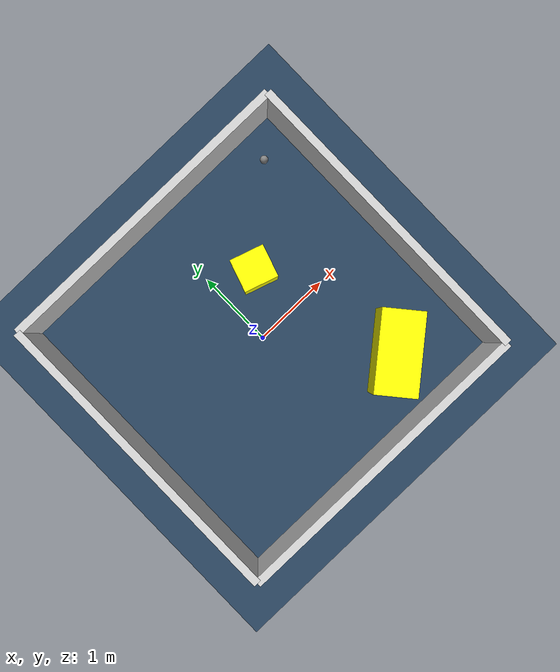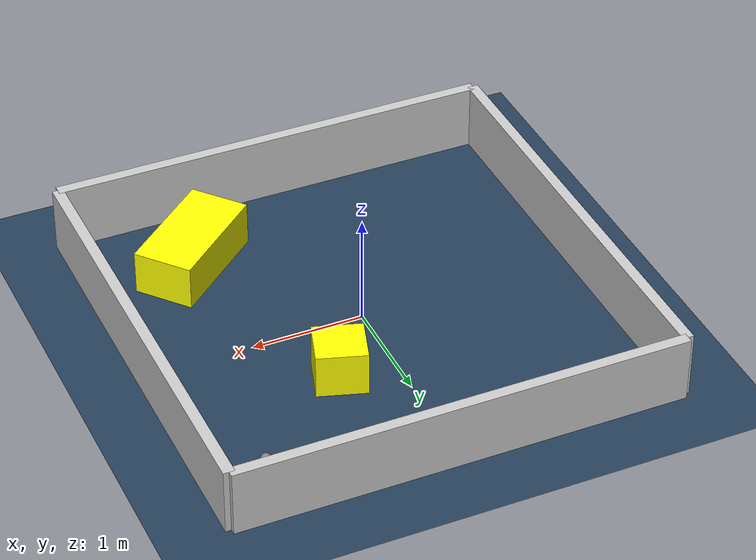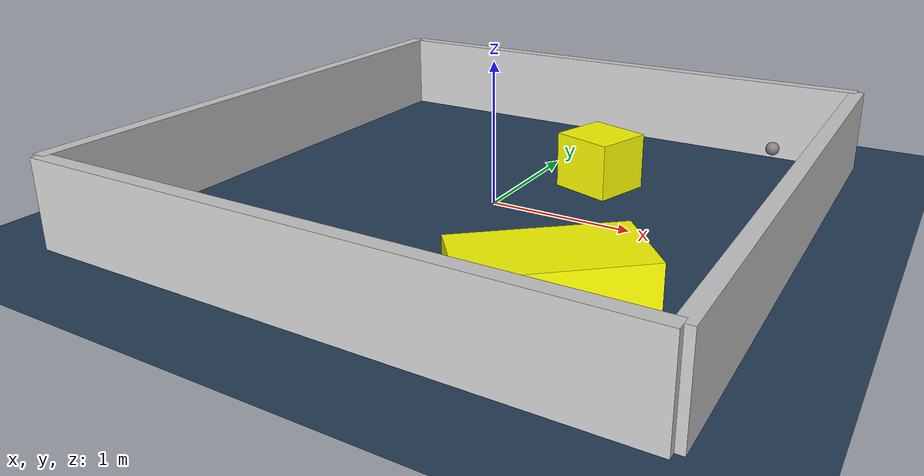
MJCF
<?xml version="1.0" ?>
<mujoco model="generated_environment">
  <option timestep="0.01" integrator="RK4" cone="elliptic"/>
  <default>
    <geom density="1"/>
  </default>
  <asset>
    <texture builtin="gradient" height="3072" rgb1="0.3 0.5 0.7" rgb2="0 0 0" type="skybox" width="512"/>
    <texture builtin="checker" height="300" mark="edge" markrgb="0.8 0.8 0.8" name="groundplane" rgb1="0.2 0.3 0.4" rgb2="0.1 0.2 0.3" type="2d" width="300"/>
    <material name="groundplane" reflectance="0.2" texrepeat="5 5" texture="groundplane" texuniform="true"/>
    <material name="robot" rgba="0.0 1.0 0.0 1"/>
  </asset>
  <worldbody>
    <light dir="0 0 -1" directional="true" pos="0 0 1.5"/>
    <geom condim="4" friction="1.0 0.005 0.001" material="groundplane" name="floor" size="0 0 0.05" type="plane"/>
    <body name="walls">
      <geom name="wall_1" condim="4" pos="-2.0 0.0 0.3" rgba="0.800000011920929 0.800000011920929 0.800000011920929 1.0" size="0.05 2.0 0.3" type="box"/>
      <geom name="wall_2" condim="4" pos="2.0 0.0 0.3" rgba="0.800000011920929 0.800000011920929 0.800000011920929 1.0" size="0.05 2.0 0.3" type="box"/>
      <geom name="wall_3" condim="4" pos="0.0 -2.0 0.3" rgba="0.800000011920929 0.800000011920929 0.800000011920929 1.0" size="2.0 0.05 0.3" type="box"/>
      <geom name="wall_4" condim="4" pos="0.0 2.0 0.3" rgba="0.800000011920929 0.800000011920929 0.800000011920929 1.0" size="2.0 0.05 0.3" type="box"/>
    </body>
    <body name="robot">
      <joint name="joint_x" type="slide" pos="0 0 0" axis="1 0 0"/>
      <joint name="joint_y" type="slide" pos="0 0 0" axis="0 1 0"/>
      <geom name="robot" type="sphere" pos="1.5180843370130437 1.555068753796899 0.2" size="0.05" mass="5." friction="1.0 0.005 0.0001" condim="4"/>
      <site name="sensor_ball"/>
    </body>
    <body name="obstacle_1_movable">
      <geom name="obstacle_1_movable" condim="4" pos="1.0535040526798394 -1.2600217004058338 0.2" euler="0 0 220.36330838045666" friction="1.0 0.005 0.001" rgba="1 1 0 1" size="0.523885276961165 0.26951690358201624 0.2" type="box" mass="0.1"/>
      <joint type="free"/>
    </body>
    <body name="obstacle_2_movable">
      <geom name="obstacle_2_movable" condim="4" pos="0.4974930961645936 0.6671228558482847 0.2" euler="0 0 342.163254342416" friction="1.0 0.005 0.001" rgba="1 1 0 1" size="0.220305791722315 0.21071074166123926 0.2" type="box" mass="0.1"/>
      <joint type="free"/>
    </body>
  </worldbody>
  <actuator>
    <motor name="actuator_x" joint="joint_x" gear="1" ctrlrange="-1 1"/>
    <motor name="actuator_y" joint="joint_y" gear="1" ctrlrange="-1 1"/>
  </actuator>
</mujoco>
